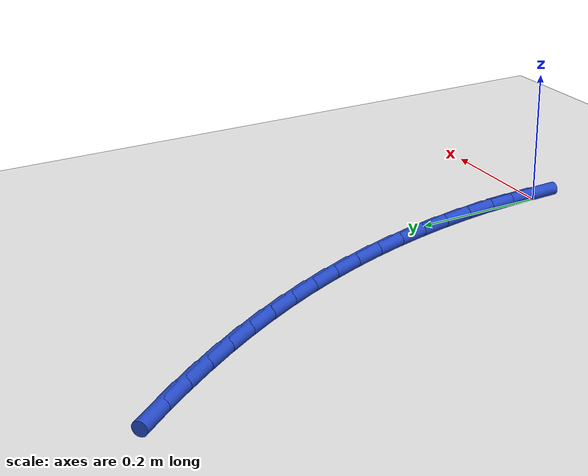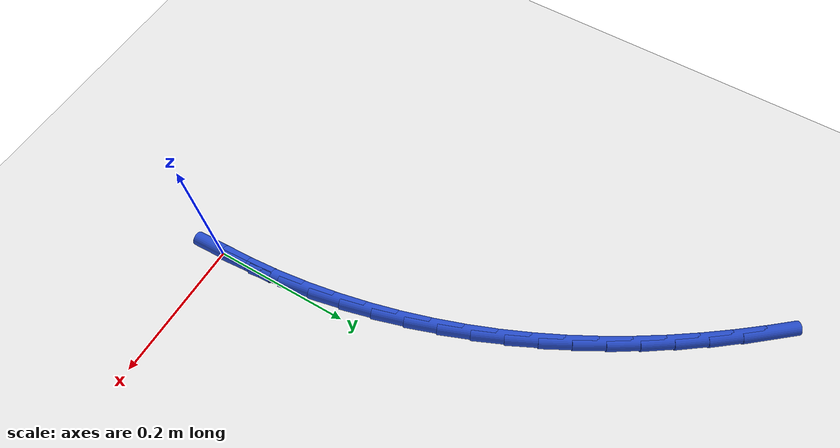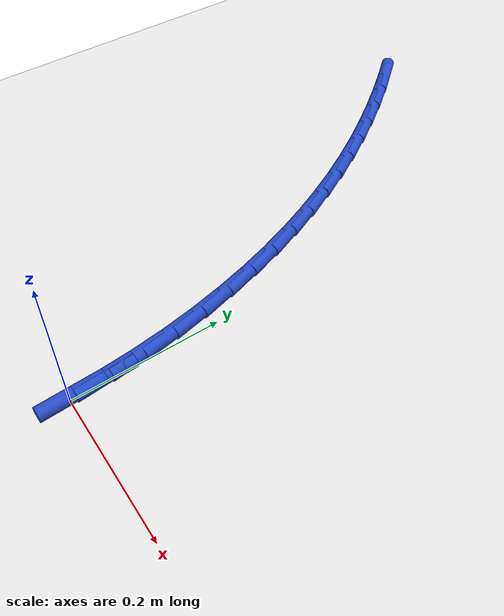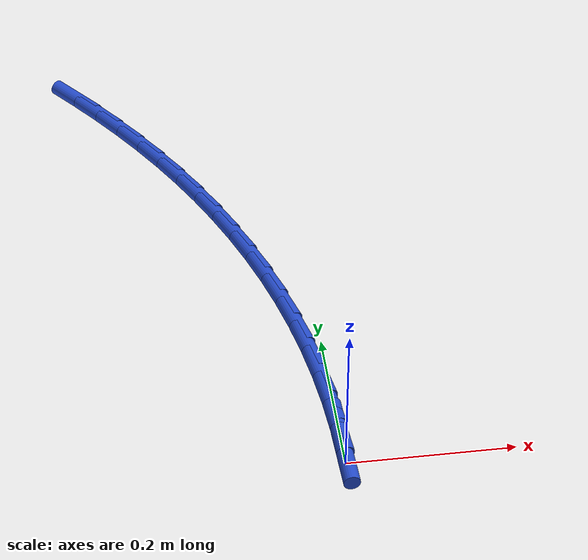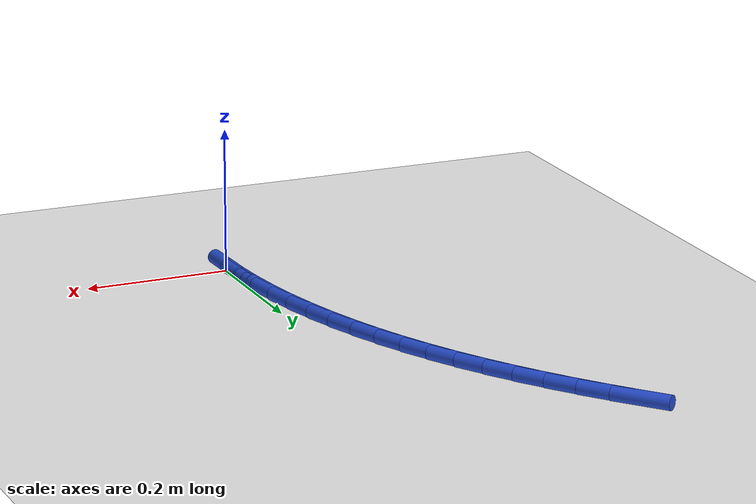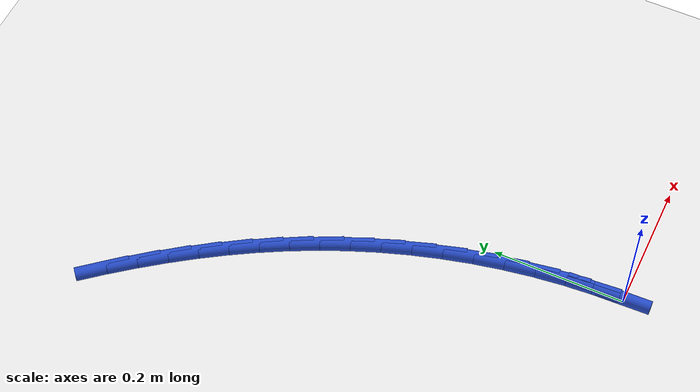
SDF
<sdf version="1.6">
 <world name="default">
  <model name="ground_plane">
   <static>1</static>
   <link name="link">
    <collision name="collision">
     <geometry><plane><normal>0 0 1</normal><size>100 100</size></plane></geometry>
     <surface><friction><ode><mu>100</mu><mu2>50</mu2></ode></friction></surface>
    </collision>
    <visual name="visual">
     <cast_shadows>0</cast_shadows>
     <geometry><plane><normal>0 0 1</normal><size>100 100</size></plane></geometry>
     <material>
      <script><uri>file://media/materials/scripts/gazebo.material</uri><name>Gazebo/WhiteGlow</name></script>
     </material>
    </visual>
   </link>
  </model>
  <model name="line">
   <link name="link_1">
    <pose>-0.0015213505319110554 0.04630983507658337 0.01 0 1.57 -1.4923707919198312</pose>
    <collision name="collision">
     <geometry><cylinder><radius>0.01</radius><length>0.08</length></cylinder></geometry>
    </collision>
    <visual name="visual">
     <material>
      <script><name>Gazebo/Blue</name><uri>file://media/materials/scripts/gazebo.material</uri></script>
     </material>
     <geometry><cylinder><radius>0.01</radius><length>0.08</length></cylinder></geometry>
    </visual>
   </link>
   <link name="link_2">
    <pose>-0.005140305612206082 0.09236030196940077 0.01 0 1.57 -1.4477918984703755</pose>
    <collision name="collision">
     <geometry><cylinder><radius>0.01</radius><length>0.08</length></cylinder></geometry>
    </collision>
    <visual name="visual">
     <material>
      <script><name>Gazebo/Blue</name><uri>file://media/materials/scripts/gazebo.material</uri></script>
     </material>
     <geometry><cylinder><radius>0.01</radius><length>0.08</length></cylinder></geometry>
    </visual>
   </link>
   <link name="link_3">
    <pose>-0.010790470736227298 0.1380630509003677 0.01 0 1.57 -1.4041319630430276</pose>
    <collision name="collision">
     <geometry><cylinder><radius>0.01</radius><length>0.08</length></cylinder></geometry>
    </collision>
    <visual name="visual">
     <material>
      <script><name>Gazebo/Blue</name><uri>file://media/materials/scripts/gazebo.material</uri></script>
     </material>
     <geometry><cylinder><radius>0.01</radius><length>0.08</length></cylinder></geometry>
    </visual>
   </link>
   <link name="link_4">
    <pose>-0.01840545139931693 0.18332973209139947 0.01 0 1.57 -1.3612896721069871</pose>
    <collision name="collision">
     <geometry><cylinder><radius>0.01</radius><length>0.08</length></cylinder></geometry>
    </collision>
    <visual name="visual">
     <material>
      <script><name>Gazebo/Blue</name><uri>file://media/materials/scripts/gazebo.material</uri></script>
     </material>
     <geometry><cylinder><radius>0.01</radius><length>0.08</length></cylinder></geometry>
    </visual>
   </link>
   <link name="link_5">
    <pose>-0.02791885309681721 0.22807199576441128 0.01 0 1.57 -1.3191521934604067</pose>
    <collision name="collision">
     <geometry><cylinder><radius>0.01</radius><length>0.08</length></cylinder></geometry>
    </collision>
    <visual name="visual">
     <material>
      <script><name>Gazebo/Blue</name><uri>file://media/materials/scripts/gazebo.material</uri></script>
     </material>
     <geometry><cylinder><radius>0.01</radius><length>0.08</length></cylinder></geometry>
    </visual>
   </link>
   <link name="link_6">
    <pose>-0.039264281324070435 0.27220149214131867 0.01 0 1.57 -1.2775966391666806</pose>
    <collision name="collision">
     <geometry><cylinder><radius>0.01</radius><length>0.08</length></cylinder></geometry>
    </collision>
    <visual name="visual">
     <material>
      <script><name>Gazebo/Blue</name><uri>file://media/materials/scripts/gazebo.material</uri></script>
     </material>
     <geometry><cylinder><radius>0.01</radius><length>0.08</length></cylinder></geometry>
    </visual>
   </link>
   <link name="link_7">
    <pose>-0.05237534157641881 0.31562987144403687 0.01 0 1.57 -1.2364911311890512</pose>
    <collision name="collision">
     <geometry><cylinder><radius>0.01</radius><length>0.08</length></cylinder></geometry>
    </collision>
    <visual name="visual">
     <material>
      <script><name>Gazebo/Blue</name><uri>file://media/materials/scripts/gazebo.material</uri></script>
     </material>
     <geometry><cylinder><radius>0.01</radius><length>0.08</length></cylinder></geometry>
    </visual>
   </link>
   <link name="link_8">
    <pose>-0.06718563934920459 0.35826878389448125 0.01 0 1.57 -1.1956954917188725</pose>
    <collision name="collision">
     <geometry><cylinder><radius>0.01</radius><length>0.08</length></cylinder></geometry>
    </collision>
    <visual name="visual">
     <material>
      <script><name>Gazebo/Blue</name><uri>file://media/materials/scripts/gazebo.material</uri></script>
     </material>
     <geometry><cylinder><radius>0.01</radius><length>0.08</length></cylinder></geometry>
    </visual>
   </link>
   <link name="link_9">
    <pose>-0.08362878013777 0.40002987971456705 0.01 0 1.57 -1.155131618764823</pose>
    <collision name="collision">
     <geometry><cylinder><radius>0.01</radius><length>0.08</length></cylinder></geometry>
    </collision>
    <visual name="visual">
     <material>
      <script><name>Gazebo/Blue</name><uri>file://media/materials/scripts/gazebo.material</uri></script>
     </material>
     <geometry><cylinder><radius>0.01</radius><length>0.08</length></cylinder></geometry>
    </visual>
   </link>
   <link name="link_10">
    <pose>-0.10164220738040038 0.4408412378524381 0.01 0 1.57 -1.1152504812001924</pose>
    <collision name="collision">
     <geometry><cylinder><radius>0.01</radius><length>0.08</length></cylinder></geometry>
    </collision>
    <visual name="visual">
     <material>
      <script><name>Gazebo/Blue</name><uri>file://media/materials/scripts/gazebo.material</uri></script>
     </material>
     <geometry><cylinder><radius>0.01</radius><length>0.08</length></cylinder></geometry>
    </visual>
   </link>
   <link name="link_11">
    <pose>-0.121188565646555 0.48073881340000635 0.01 0 1.57 -1.0764971303915611</pose>
    <collision name="collision">
     <geometry><cylinder><radius>0.01</radius><length>0.08</length></cylinder></geometry>
    </collision>
    <visual name="visual">
     <material>
      <script><name>Gazebo/Blue</name><uri>file://media/materials/scripts/gazebo.material</uri></script>
     </material>
     <geometry><cylinder><radius>0.01</radius><length>0.08</length></cylinder></geometry>
    </visual>
   </link>
   <link name="link_12">
    <pose>-0.14224066558096513 0.5198020784242768 0.01 0 1.57 -1.0391451640996279</pose>
    <collision name="collision">
     <geometry><cylinder><radius>0.01</radius><length>0.08</length></cylinder></geometry>
    </collision>
    <visual name="visual">
     <material>
      <script><name>Gazebo/Blue</name><uri>file://media/materials/scripts/gazebo.material</uri></script>
     </material>
     <geometry><cylinder><radius>0.01</radius><length>0.08</length></cylinder></geometry>
    </visual>
   </link>
   <link name="link_13">
    <pose>-0.16477134600680102 0.5581106256130831 0.01 0 1.57 -1.0034326714156125</pose>
    <collision name="collision">
     <geometry><cylinder><radius>0.01</radius><length>0.08</length></cylinder></geometry>
    </collision>
    <visual name="visual">
     <material>
      <script><name>Gazebo/Blue</name><uri>file://media/materials/scripts/gazebo.material</uri></script>
     </material>
     <geometry><cylinder><radius>0.01</radius><length>0.08</length></cylinder></geometry>
    </visual>
   </link>
   <link name="link_14">
    <pose>-0.1887534457472327 0.5957440476542584 0.01 0 1.57 -0.9695582686002274</pose>
    <collision name="collision">
     <geometry><cylinder><radius>0.01</radius><length>0.08</length></cylinder></geometry>
    </collision>
    <visual name="visual">
     <material>
      <script><name>Gazebo/Blue</name><uri>file://media/materials/scripts/gazebo.material</uri></script>
     </material>
     <geometry><cylinder><radius>0.01</radius><length>0.08</length></cylinder></geometry>
    </visual>
   </link>
   <link name="link_15">
    <pose>-0.21415980362543027 0.6327819372356356 0.01 0 1.57 -0.93767916767748</pose>
    <collision name="collision">
     <geometry><cylinder><radius>0.01</radius><length>0.08</length></cylinder></geometry>
    </collision>
    <visual name="visual">
     <material>
      <script><name>Gazebo/Blue</name><uri>file://media/materials/scripts/gazebo.material</uri></script>
     </material>
     <geometry><cylinder><radius>0.01</radius><length>0.08</length></cylinder></geometry>
    </visual>
   </link>
   <link name="link_16">
    <pose>-0.2409632584645639 0.6693038870450483 0.01 0 1.57 -0.9079115399007249</pose>
    <collision name="collision">
     <geometry><cylinder><radius>0.01</radius><length>0.08</length></cylinder></geometry>
    </collision>
    <visual name="visual">
     <material>
      <script><name>Gazebo/Blue</name><uri>file://media/materials/scripts/gazebo.material</uri></script>
     </material>
     <geometry><cylinder><radius>0.01</radius><length>0.08</length></cylinder></geometry>
    </visual>
   </link>
   <link name="link_17">
    <pose>-0.26913664908780366 0.7053894897703294 0.01 0 1.57 -0.8803327407412849</pose>
    <collision name="collision">
     <geometry><cylinder><radius>0.01</radius><length>0.08</length></cylinder></geometry>
    </collision>
    <visual name="visual">
     <material>
      <script><name>Gazebo/Blue</name><uri>file://media/materials/scripts/gazebo.material</uri></script>
     </material>
     <geometry><cylinder><radius>0.01</radius><length>0.08</length></cylinder></geometry>
    </visual>
   </link>
   <link name="link_150">
    <pose>5.377642775528102e-17 2.498001805406602e-16 0.01 0 1.57 -1.5376973066511628</pose>
    <collision name="collision">
     <geometry><cylinder><radius>0.01</radius><length>0.08</length></cylinder></geometry>
    </collision>
    <visual name="visual">
     <material>
      <script><name>Gazebo/Blue</name><uri>file://media/materials/scripts/gazebo.material</uri></script>
     </material>
     <geometry><cylinder><radius>0.01</radius><length>0.08</length></cylinder></geometry>
    </visual>
   </link>
   <link name="link_151">
    <pose>-0.0015327521591371983 0.0462911705102376 0.01 0 1.57 -1.5376973066511632</pose>
    <collision name="collision">
     <geometry><cylinder><radius>0.01</radius><length>0.08</length></cylinder></geometry>
    </collision>
    <visual name="visual">
     <material>
      <script><name>Gazebo/Blue</name><uri>file://media/materials/scripts/gazebo.material</uri></script>
     </material>
     <geometry><cylinder><radius>0.01</radius><length>0.08</length></cylinder></geometry>
    </visual>
   </link>
  </model>
 </world>
</sdf>
